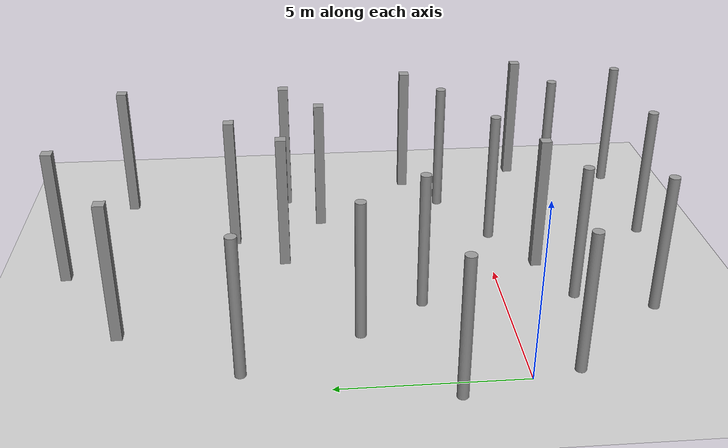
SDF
<sdf version="1.6">
 <world name="default">
  <model name="ground_plane">
   <static>1</static>
   <link name="link">
    <collision name="collision">
     <geometry><plane><normal>0 0 1</normal><size>100 100</size></plane></geometry>
    </collision>
    <visual name="visual">
     <cast_shadows>0</cast_shadows>
     <geometry><plane><normal>0 0 1</normal><size>100 100</size></plane></geometry>
     <material>
      <script><uri>file://media/materials/scripts/gazebo.material</uri><name>Gazebo/Gray</name></script>
     </material>
    </visual>
   </link>
  </model>
  <model name="unit_cylinder">
   <link name="link">
    <inertial>
     <mass>1000</mass>
     <inertia><ixx>145.833</ixx><ixy>0</ixy><ixz>0</ixz><iyy>145.833</iyy><iyz>0</iyz><izz>125</izz></inertia>
    </inertial>
    <visual name="visual">
     <geometry><cylinder><radius>0.15</radius><length>4</length></cylinder></geometry>
     <material>
      <script><name>Gazebo/Grey</name><uri>file://media/materials/scripts/gazebo.material</uri></script>
      <shader type="vertex"><normal_map>__default__</normal_map></shader>
      <ambient>0.3 0.3 0.3 1</ambient>
      <diffuse>0.7 0.7 0.7 1</diffuse>
      <specular>0.01 0.01 0.01 1</specular>
      <emissive>0 0 0 1</emissive>
     </material>
    </visual>
    <collision name="collision">
     <geometry><cylinder><radius>0.15</radius><length>4</length></cylinder></geometry>
     <surface>
      <friction>
       <ode><mu>1</mu><mu2>1</mu2><fdir1>0 0 0</fdir1><slip1>0</slip1><slip2>0</slip2></ode>
       <torsional>
        <coefficient>1</coefficient>
        <patch_radius>0</patch_radius>
        <surface_radius>0</surface_radius>
        <use_patch_radius>1</use_patch_radius>
        <ode><slip>0</slip></ode>
       </torsional>
      </friction>
      <bounce><restitution_coefficient>0</restitution_coefficient><threshold>1e+06</threshold></bounce>
      <contact>
       <collide_without_contact>0</collide_without_contact>
       <collide_without_contact_bitmask>1</collide_without_contact_bitmask>
       <collide_bitmask>1</collide_bitmask>
       <ode>
        <soft_cfm>0</soft_cfm>
        <soft_erp>0.2</soft_erp>
        <kp>1e+13</kp>
        <kd>1</kd>
        <max_vel>0.01</max_vel>
        <min_depth>0</min_depth>
       </ode>
       <bullet>
        <split_impulse>1</split_impulse>
        <split_impulse_penetration_threshold>-0.01</split_impulse_penetration_threshold>
        <soft_cfm>0</soft_cfm>
        <soft_erp>0.2</soft_erp>
        <kp>1e+13</kp>
        <kd>1</kd>
       </bullet>
      </contact>
     </surface>
    </collision>
   </link>
   <static>0</static>
   <pose>3.55788 2.30314 1.99998 -2e-06 -0 -0.201387</pose>
  </model>
  <model name="unit_cylinder_clone_3">
   <link name="link">
    <inertial>
     <mass>1000</mass>
     <inertia><ixx>145.833</ixx><ixy>0</ixy><ixz>0</ixz><iyy>145.833</iyy><iyz>0</iyz><izz>125</izz></inertia>
    </inertial>
    <visual name="visual">
     <geometry><cylinder><radius>0.15</radius><length>4</length></cylinder></geometry>
     <material>
      <script><name>Gazebo/Grey</name><uri>file://media/materials/scripts/gazebo.material</uri></script>
      <shader type="vertex"><normal_map>__default__</normal_map></shader>
      <ambient>0.3 0.3 0.3 1</ambient>
      <diffuse>0.7 0.7 0.7 1</diffuse>
      <specular>0.01 0.01 0.01 1</specular>
      <emissive>0 0 0 1</emissive>
     </material>
    </visual>
    <collision name="collision">
     <geometry><cylinder><radius>0.15</radius><length>4</length></cylinder></geometry>
     <surface>
      <friction>
       <ode><mu>1</mu><mu2>1</mu2><fdir1>0 0 0</fdir1><slip1>0</slip1><slip2>0</slip2></ode>
       <torsional>
        <coefficient>1</coefficient>
        <patch_radius>0</patch_radius>
        <surface_radius>0</surface_radius>
        <use_patch_radius>1</use_patch_radius>
        <ode><slip>0</slip></ode>
       </torsional>
      </friction>
      <bounce><restitution_coefficient>0</restitution_coefficient><threshold>1e+06</threshold></bounce>
      <contact>
       <collide_without_contact>0</collide_without_contact>
       <collide_without_contact_bitmask>1</collide_without_contact_bitmask>
       <collide_bitmask>1</collide_bitmask>
       <ode>
        <soft_cfm>0</soft_cfm>
        <soft_erp>0.2</soft_erp>
        <kp>1e+13</kp>
        <kd>1</kd>
        <max_vel>0.01</max_vel>
        <min_depth>0</min_depth>
       </ode>
       <bullet>
        <split_impulse>1</split_impulse>
        <split_impulse_penetration_threshold>-0.01</split_impulse_penetration_threshold>
        <soft_cfm>0</soft_cfm>
        <soft_erp>0.2</soft_erp>
        <kp>1e+13</kp>
        <kd>1</kd>
       </bullet>
      </contact>
     </surface>
    </collision>
   </link>
   <static>0</static>
   <pose>0.764098 7.25686 1.99998 -2e-06 -1e-06 -0.193878</pose>
  </model>
  <model name="unit_cylinder_clone_0_clone">
   <link name="link">
    <inertial>
     <mass>1000</mass>
     <inertia><ixx>145.833</ixx><ixy>0</ixy><ixz>0</ixz><iyy>145.833</iyy><iyz>0</iyz><izz>125</izz></inertia>
    </inertial>
    <visual name="visual">
     <geometry><cylinder><radius>0.15</radius><length>4</length></cylinder></geometry>
     <material>
      <script><name>Gazebo/Grey</name><uri>file://media/materials/scripts/gazebo.material</uri></script>
      <shader type="vertex"><normal_map>__default__</normal_map></shader>
      <ambient>0.3 0.3 0.3 1</ambient>
      <diffuse>0.7 0.7 0.7 1</diffuse>
      <specular>0.01 0.01 0.01 1</specular>
      <emissive>0 0 0 1</emissive>
     </material>
    </visual>
    <collision name="collision">
     <geometry><cylinder><radius>0.15</radius><length>4</length></cylinder></geometry>
     <surface>
      <friction>
       <ode><mu>1</mu><mu2>1</mu2><fdir1>0 0 0</fdir1><slip1>0</slip1><slip2>0</slip2></ode>
       <torsional>
        <coefficient>1</coefficient>
        <patch_radius>0</patch_radius>
        <surface_radius>0</surface_radius>
        <use_patch_radius>1</use_patch_radius>
        <ode><slip>0</slip></ode>
       </torsional>
      </friction>
      <bounce><restitution_coefficient>0</restitution_coefficient><threshold>1e+06</threshold></bounce>
      <contact>
       <collide_without_contact>0</collide_without_contact>
       <collide_without_contact_bitmask>1</collide_without_contact_bitmask>
       <collide_bitmask>1</collide_bitmask>
       <ode>
        <soft_cfm>0</soft_cfm>
        <soft_erp>0.2</soft_erp>
        <kp>1e+13</kp>
        <kd>1</kd>
        <max_vel>0.01</max_vel>
        <min_depth>0</min_depth>
       </ode>
       <bullet>
        <split_impulse>1</split_impulse>
        <split_impulse_penetration_threshold>-0.01</split_impulse_penetration_threshold>
        <soft_cfm>0</soft_cfm>
        <soft_erp>0.2</soft_erp>
        <kp>1e+13</kp>
        <kd>1</kd>
       </bullet>
      </contact>
     </surface>
    </collision>
   </link>
   <static>0</static>
   <pose>10.8485 -4.98906 1.99998 -1e-06 1e-06 -0.171576</pose>
  </model>
  <model name="unit_cylinder_clone_1_clone_8">
   <link name="link">
    <inertial>
     <mass>1000</mass>
     <inertia><ixx>145.833</ixx><ixy>0</ixy><ixz>0</ixz><iyy>145.833</iyy><iyz>0</iyz><izz>125</izz></inertia>
    </inertial>
    <visual name="visual">
     <geometry><cylinder><radius>0.15</radius><length>4</length></cylinder></geometry>
     <material>
      <script><name>Gazebo/Grey</name><uri>file://media/materials/scripts/gazebo.material</uri></script>
      <shader type="vertex"><normal_map>__default__</normal_map></shader>
      <ambient>0.3 0.3 0.3 1</ambient>
      <diffuse>0.7 0.7 0.7 1</diffuse>
      <specular>0.01 0.01 0.01 1</specular>
      <emissive>0 0 0 1</emissive>
     </material>
    </visual>
    <collision name="collision">
     <geometry><cylinder><radius>0.15</radius><length>4</length></cylinder></geometry>
     <surface>
      <friction>
       <ode><mu>1</mu><mu2>1</mu2><fdir1>0 0 0</fdir1><slip1>0</slip1><slip2>0</slip2></ode>
       <torsional>
        <coefficient>1</coefficient>
        <patch_radius>0</patch_radius>
        <surface_radius>0</surface_radius>
        <use_patch_radius>1</use_patch_radius>
        <ode><slip>0</slip></ode>
       </torsional>
      </friction>
      <bounce><restitution_coefficient>0</restitution_coefficient><threshold>1e+06</threshold></bounce>
      <contact>
       <collide_without_contact>0</collide_without_contact>
       <collide_without_contact_bitmask>1</collide_without_contact_bitmask>
       <collide_bitmask>1</collide_bitmask>
       <ode>
        <soft_cfm>0</soft_cfm>
        <soft_erp>0.2</soft_erp>
        <kp>1e+13</kp>
        <kd>1</kd>
        <max_vel>0.01</max_vel>
        <min_depth>0</min_depth>
       </ode>
       <bullet>
        <split_impulse>1</split_impulse>
        <split_impulse_penetration_threshold>-0.01</split_impulse_penetration_threshold>
        <soft_cfm>0</soft_cfm>
        <soft_erp>0.2</soft_erp>
        <kp>1e+13</kp>
        <kd>1</kd>
       </bullet>
      </contact>
     </surface>
    </collision>
   </link>
   <static>0</static>
   <pose>0.289465 -1.27897 1.99995 -0.000271 -2.6e-05 -0.890373</pose>
  </model>
  <model name="unit_cylinder_clone_1_clone_23">
   <link name="link">
    <inertial>
     <mass>1000</mass>
     <inertia><ixx>145.833</ixx><ixy>0</ixy><ixz>0</ixz><iyy>145.833</iyy><iyz>0</iyz><izz>125</izz></inertia>
    </inertial>
    <visual name="visual">
     <geometry><cylinder><radius>0.15</radius><length>4</length></cylinder></geometry>
     <material>
      <script><name>Gazebo/Grey</name><uri>file://media/materials/scripts/gazebo.material</uri></script>
      <shader type="vertex"><normal_map>__default__</normal_map></shader>
      <ambient>0.3 0.3 0.3 1</ambient>
      <diffuse>0.7 0.7 0.7 1</diffuse>
      <specular>0.01 0.01 0.01 1</specular>
      <emissive>0 0 0 1</emissive>
     </material>
    </visual>
    <collision name="collision">
     <geometry><cylinder><radius>0.15</radius><length>4</length></cylinder></geometry>
     <surface>
      <friction>
       <ode><mu>1</mu><mu2>1</mu2><fdir1>0 0 0</fdir1><slip1>0</slip1><slip2>0</slip2></ode>
       <torsional>
        <coefficient>1</coefficient>
        <patch_radius>0</patch_radius>
        <surface_radius>0</surface_radius>
        <use_patch_radius>1</use_patch_radius>
        <ode><slip>0</slip></ode>
       </torsional>
      </friction>
      <bounce><restitution_coefficient>0</restitution_coefficient><threshold>1e+06</threshold></bounce>
      <contact>
       <collide_without_contact>0</collide_without_contact>
       <collide_without_contact_bitmask>1</collide_without_contact_bitmask>
       <collide_bitmask>1</collide_bitmask>
       <ode>
        <soft_cfm>0</soft_cfm>
        <soft_erp>0.2</soft_erp>
        <kp>1e+13</kp>
        <kd>1</kd>
        <max_vel>0.01</max_vel>
        <min_depth>0</min_depth>
       </ode>
       <bullet>
        <split_impulse>1</split_impulse>
        <split_impulse_penetration_threshold>-0.01</split_impulse_penetration_threshold>
        <soft_cfm>0</soft_cfm>
        <soft_erp>0.2</soft_erp>
        <kp>1e+13</kp>
        <kd>1</kd>
       </bullet>
      </contact>
     </surface>
    </collision>
   </link>
   <static>0</static>
   <pose>7.09492 -5.00661 1.99998 -1e-06 1e-06 -0.352491</pose>
  </model>
  <model name="unit_cylinder_clone_1_clone_29">
   <link name="link">
    <inertial>
     <mass>1000</mass>
     <inertia><ixx>145.833</ixx><ixy>0</ixy><ixz>0</ixz><iyy>145.833</iyy><iyz>0</iyz><izz>125</izz></inertia>
    </inertial>
    <visual name="visual">
     <geometry><cylinder><radius>0.15</radius><length>4</length></cylinder></geometry>
     <material>
      <script><name>Gazebo/Grey</name><uri>file://media/materials/scripts/gazebo.material</uri></script>
      <shader type="vertex"><normal_map>__default__</normal_map></shader>
      <ambient>0.3 0.3 0.3 1</ambient>
      <diffuse>0.7 0.7 0.7 1</diffuse>
      <specular>0.01 0.01 0.01 1</specular>
      <emissive>0 0 0 1</emissive>
     </material>
    </visual>
    <collision name="collision">
     <geometry><cylinder><radius>0.15</radius><length>4</length></cylinder></geometry>
     <surface>
      <friction>
       <ode><mu>1</mu><mu2>1</mu2><fdir1>0 0 0</fdir1><slip1>0</slip1><slip2>0</slip2></ode>
       <torsional>
        <coefficient>1</coefficient>
        <patch_radius>0</patch_radius>
        <surface_radius>0</surface_radius>
        <use_patch_radius>1</use_patch_radius>
        <ode><slip>0</slip></ode>
       </torsional>
      </friction>
      <bounce><restitution_coefficient>0</restitution_coefficient><threshold>1e+06</threshold></bounce>
      <contact>
       <collide_without_contact>0</collide_without_contact>
       <collide_without_contact_bitmask>1</collide_without_contact_bitmask>
       <collide_bitmask>1</collide_bitmask>
       <ode>
        <soft_cfm>0</soft_cfm>
        <soft_erp>0.2</soft_erp>
        <kp>1e+13</kp>
        <kd>1</kd>
        <max_vel>0.01</max_vel>
        <min_depth>0</min_depth>
       </ode>
       <bullet>
        <split_impulse>1</split_impulse>
        <split_impulse_penetration_threshold>-0.01</split_impulse_penetration_threshold>
        <soft_cfm>0</soft_cfm>
        <soft_erp>0.2</soft_erp>
        <kp>1e+13</kp>
        <kd>1</kd>
       </bullet>
      </contact>
     </surface>
    </collision>
   </link>
   <static>0</static>
   <pose>9.84571 -2.62797 1.99995 -0.000271 -2.6e-05 -0.891066</pose>
  </model>
  <model name="unit_cylinder_clone_1_clone_7_clone">
   <link name="link">
    <inertial>
     <mass>1000</mass>
     <inertia><ixx>145.833</ixx><ixy>0</ixy><ixz>0</ixz><iyy>145.833</iyy><iyz>0</iyz><izz>125</izz></inertia>
    </inertial>
    <visual name="visual">
     <geometry><cylinder><radius>0.15</radius><length>4</length></cylinder></geometry>
     <material>
      <script><name>Gazebo/Grey</name><uri>file://media/materials/scripts/gazebo.material</uri></script>
      <shader type="vertex"><normal_map>__default__</normal_map></shader>
      <ambient>0.3 0.3 0.3 1</ambient>
      <diffuse>0.7 0.7 0.7 1</diffuse>
      <specular>0.01 0.01 0.01 1</specular>
      <emissive>0 0 0 1</emissive>
     </material>
    </visual>
    <collision name="collision">
     <geometry><cylinder><radius>0.15</radius><length>4</length></cylinder></geometry>
     <surface>
      <friction>
       <ode><mu>1</mu><mu2>1</mu2><fdir1>0 0 0</fdir1><slip1>0</slip1><slip2>0</slip2></ode>
       <torsional>
        <coefficient>1</coefficient>
        <patch_radius>0</patch_radius>
        <surface_radius>0</surface_radius>
        <use_patch_radius>1</use_patch_radius>
        <ode><slip>0</slip></ode>
       </torsional>
      </friction>
      <bounce><restitution_coefficient>0</restitution_coefficient><threshold>1e+06</threshold></bounce>
      <contact>
       <collide_without_contact>0</collide_without_contact>
       <collide_without_contact_bitmask>1</collide_without_contact_bitmask>
       <collide_bitmask>1</collide_bitmask>
       <ode>
        <soft_cfm>0</soft_cfm>
        <soft_erp>0.2</soft_erp>
        <kp>1e+13</kp>
        <kd>1</kd>
        <max_vel>0.01</max_vel>
        <min_depth>0</min_depth>
       </ode>
       <bullet>
        <split_impulse>1</split_impulse>
        <split_impulse_penetration_threshold>-0.01</split_impulse_penetration_threshold>
        <soft_cfm>0</soft_cfm>
        <soft_erp>0.2</soft_erp>
        <kp>1e+13</kp>
        <kd>1</kd>
       </bullet>
      </contact>
     </surface>
    </collision>
   </link>
   <static>0</static>
   <pose>2.21006 4.12357 1.99995 -0.000271 -2.7e-05 -0.891304</pose>
  </model>
  <model name="unit_cylinder_clone_1_clone_7_clone_9">
   <link name="link">
    <inertial>
     <mass>1000</mass>
     <inertia><ixx>145.833</ixx><ixy>0</ixy><ixz>0</ixz><iyy>145.833</iyy><iyz>0</iyz><izz>125</izz></inertia>
    </inertial>
    <visual name="visual">
     <geometry><cylinder><radius>0.15</radius><length>4</length></cylinder></geometry>
     <material>
      <script><name>Gazebo/Grey</name><uri>file://media/materials/scripts/gazebo.material</uri></script>
      <shader type="vertex"><normal_map>__default__</normal_map></shader>
      <ambient>0.3 0.3 0.3 1</ambient>
      <diffuse>0.7 0.7 0.7 1</diffuse>
      <specular>0.01 0.01 0.01 1</specular>
      <emissive>0 0 0 1</emissive>
     </material>
    </visual>
    <collision name="collision">
     <geometry><cylinder><radius>0.15</radius><length>4</length></cylinder></geometry>
     <surface>
      <friction>
       <ode><mu>1</mu><mu2>1</mu2><fdir1>0 0 0</fdir1><slip1>0</slip1><slip2>0</slip2></ode>
       <torsional>
        <coefficient>1</coefficient>
        <patch_radius>0</patch_radius>
        <surface_radius>0</surface_radius>
        <use_patch_radius>1</use_patch_radius>
        <ode><slip>0</slip></ode>
       </torsional>
      </friction>
      <bounce><restitution_coefficient>0</restitution_coefficient><threshold>1e+06</threshold></bounce>
      <contact>
       <collide_without_contact>0</collide_without_contact>
       <collide_without_contact_bitmask>1</collide_without_contact_bitmask>
       <collide_bitmask>1</collide_bitmask>
       <ode>
        <soft_cfm>0</soft_cfm>
        <soft_erp>0.2</soft_erp>
        <kp>1e+13</kp>
        <kd>1</kd>
        <max_vel>0.01</max_vel>
        <min_depth>0</min_depth>
       </ode>
       <bullet>
        <split_impulse>1</split_impulse>
        <split_impulse_penetration_threshold>-0.01</split_impulse_penetration_threshold>
        <soft_cfm>0</soft_cfm>
        <soft_erp>0.2</soft_erp>
        <kp>1e+13</kp>
        <kd>1</kd>
       </bullet>
      </contact>
     </surface>
    </collision>
   </link>
   <static>0</static>
   <pose>2.88112 -4.08104 1.99995 -0.000272 -2.5e-05 -0.886246</pose>
  </model>
  <model name="unit_cylinder_clone_1_clone_7_clone_10">
   <link name="link">
    <inertial>
     <mass>1000</mass>
     <inertia><ixx>145.833</ixx><ixy>0</ixy><ixz>0</ixz><iyy>145.833</iyy><iyz>0</iyz><izz>125</izz></inertia>
    </inertial>
    <visual name="visual">
     <geometry><cylinder><radius>0.15</radius><length>4</length></cylinder></geometry>
     <material>
      <script><name>Gazebo/Grey</name><uri>file://media/materials/scripts/gazebo.material</uri></script>
      <shader type="vertex"><normal_map>__default__</normal_map></shader>
      <ambient>0.3 0.3 0.3 1</ambient>
      <diffuse>0.7 0.7 0.7 1</diffuse>
      <specular>0.01 0.01 0.01 1</specular>
      <emissive>0 0 0 1</emissive>
     </material>
    </visual>
    <collision name="collision">
     <geometry><cylinder><radius>0.15</radius><length>4</length></cylinder></geometry>
     <surface>
      <friction>
       <ode><mu>1</mu><mu2>1</mu2><fdir1>0 0 0</fdir1><slip1>0</slip1><slip2>0</slip2></ode>
       <torsional>
        <coefficient>1</coefficient>
        <patch_radius>0</patch_radius>
        <surface_radius>0</surface_radius>
        <use_patch_radius>1</use_patch_radius>
        <ode><slip>0</slip></ode>
       </torsional>
      </friction>
      <bounce><restitution_coefficient>0</restitution_coefficient><threshold>1e+06</threshold></bounce>
      <contact>
       <collide_without_contact>0</collide_without_contact>
       <collide_without_contact_bitmask>1</collide_without_contact_bitmask>
       <collide_bitmask>1</collide_bitmask>
       <ode>
        <soft_cfm>0</soft_cfm>
        <soft_erp>0.2</soft_erp>
        <kp>1e+13</kp>
        <kd>1</kd>
        <max_vel>0.01</max_vel>
        <min_depth>0</min_depth>
       </ode>
       <bullet>
        <split_impulse>1</split_impulse>
        <split_impulse_penetration_threshold>-0.01</split_impulse_penetration_threshold>
        <soft_cfm>0</soft_cfm>
        <soft_erp>0.2</soft_erp>
        <kp>1e+13</kp>
        <kd>1</kd>
       </bullet>
      </contact>
     </surface>
    </collision>
   </link>
   <static>0</static>
   <pose>-0.498852 1.86456 1.99995 -0.000272 -2.5e-05 -0.885145</pose>
  </model>
  <model name="unit_cylinder_clone_10">
   <link name="link">
    <inertial>
     <mass>1000</mass>
     <inertia><ixx>145.833</ixx><ixy>0</ixy><ixz>0</ixz><iyy>145.833</iyy><iyz>0</iyz><izz>125</izz></inertia>
    </inertial>
    <visual name="visual">
     <geometry><cylinder><radius>0.15</radius><length>4</length></cylinder></geometry>
     <material>
      <script><name>Gazebo/Grey</name><uri>file://media/materials/scripts/gazebo.material</uri></script>
      <shader type="vertex"><normal_map>__default__</normal_map></shader>
      <ambient>0.3 0.3 0.3 1</ambient>
      <diffuse>0.7 0.7 0.7 1</diffuse>
      <specular>0.01 0.01 0.01 1</specular>
      <emissive>0 0 0 1</emissive>
     </material>
    </visual>
    <collision name="collision">
     <geometry><cylinder><radius>0.15</radius><length>4</length></cylinder></geometry>
     <surface>
      <friction>
       <ode><mu>1</mu><mu2>1</mu2><fdir1>0 0 0</fdir1><slip1>0</slip1><slip2>0</slip2></ode>
       <torsional>
        <coefficient>1</coefficient>
        <patch_radius>0</patch_radius>
        <surface_radius>0</surface_radius>
        <use_patch_radius>1</use_patch_radius>
        <ode><slip>0</slip></ode>
       </torsional>
      </friction>
      <bounce><restitution_coefficient>0</restitution_coefficient><threshold>1e+06</threshold></bounce>
      <contact>
       <collide_without_contact>0</collide_without_contact>
       <collide_without_contact_bitmask>1</collide_without_contact_bitmask>
       <collide_bitmask>1</collide_bitmask>
       <ode>
        <soft_cfm>0</soft_cfm>
        <soft_erp>0.2</soft_erp>
        <kp>1e+13</kp>
        <kd>1</kd>
        <max_vel>0.01</max_vel>
        <min_depth>0</min_depth>
       </ode>
       <bullet>
        <split_impulse>1</split_impulse>
        <split_impulse_penetration_threshold>-0.01</split_impulse_penetration_threshold>
        <soft_cfm>0</soft_cfm>
        <soft_erp>0.2</soft_erp>
        <kp>1e+13</kp>
        <kd>1</kd>
       </bullet>
      </contact>
     </surface>
    </collision>
   </link>
   <static>0</static>
   <pose>9.48043 1.00475 1.99998 -2e-06 1e-06 -0.19166</pose>
  </model>
  <model name="unit_cylinder_clone_11">
   <link name="link">
    <inertial>
     <mass>1000</mass>
     <inertia><ixx>145.833</ixx><ixy>0</ixy><ixz>0</ixz><iyy>145.833</iyy><iyz>0</iyz><izz>125</izz></inertia>
    </inertial>
    <visual name="visual">
     <geometry><cylinder><radius>0.15</radius><length>4</length></cylinder></geometry>
     <material>
      <script><name>Gazebo/Grey</name><uri>file://media/materials/scripts/gazebo.material</uri></script>
      <shader type="vertex"><normal_map>__default__</normal_map></shader>
      <ambient>0.3 0.3 0.3 1</ambient>
      <diffuse>0.7 0.7 0.7 1</diffuse>
      <specular>0.01 0.01 0.01 1</specular>
      <emissive>0 0 0 1</emissive>
     </material>
    </visual>
    <collision name="collision">
     <geometry><cylinder><radius>0.15</radius><length>4</length></cylinder></geometry>
     <surface>
      <friction>
       <ode><mu>1</mu><mu2>1</mu2><fdir1>0 0 0</fdir1><slip1>0</slip1><slip2>0</slip2></ode>
       <torsional>
        <coefficient>1</coefficient>
        <patch_radius>0</patch_radius>
        <surface_radius>0</surface_radius>
        <use_patch_radius>1</use_patch_radius>
        <ode><slip>0</slip></ode>
       </torsional>
      </friction>
      <bounce><restitution_coefficient>0</restitution_coefficient><threshold>1e+06</threshold></bounce>
      <contact>
       <collide_without_contact>0</collide_without_contact>
       <collide_without_contact_bitmask>1</collide_without_contact_bitmask>
       <collide_bitmask>1</collide_bitmask>
       <ode>
        <soft_cfm>0</soft_cfm>
        <soft_erp>0.2</soft_erp>
        <kp>1e+13</kp>
        <kd>1</kd>
        <max_vel>0.01</max_vel>
        <min_depth>0</min_depth>
       </ode>
       <bullet>
        <split_impulse>1</split_impulse>
        <split_impulse_penetration_threshold>-0.01</split_impulse_penetration_threshold>
        <soft_cfm>0</soft_cfm>
        <soft_erp>0.2</soft_erp>
        <kp>1e+13</kp>
        <kd>1</kd>
       </bullet>
      </contact>
     </surface>
    </collision>
   </link>
   <static>0</static>
   <pose>7.15955 -0.270159 1.99998 -1e-06 -0 -0.201085</pose>
  </model>
  <model name="unit_cylinder_clone_clone_2">
   <link name="link">
    <inertial>
     <mass>1000</mass>
     <inertia><ixx>145.833</ixx><ixy>0</ixy><ixz>0</ixz><iyy>145.833</iyy><iyz>0</iyz><izz>125</izz></inertia>
    </inertial>
    <visual name="visual">
     <geometry><cylinder><radius>0.15</radius><length>4</length></cylinder></geometry>
     <material>
      <script><name>Gazebo/Grey</name><uri>file://media/materials/scripts/gazebo.material</uri></script>
      <shader type="vertex"><normal_map>__default__</normal_map></shader>
      <ambient>0.3 0.3 0.3 1</ambient>
      <diffuse>0.7 0.7 0.7 1</diffuse>
      <specular>0.01 0.01 0.01 1</specular>
      <emissive>0 0 0 1</emissive>
     </material>
    </visual>
    <collision name="collision">
     <geometry><cylinder><radius>0.15</radius><length>4</length></cylinder></geometry>
     <surface>
      <friction>
       <ode><mu>1</mu><mu2>1</mu2><fdir1>0 0 0</fdir1><slip1>0</slip1><slip2>0</slip2></ode>
       <torsional>
        <coefficient>1</coefficient>
        <patch_radius>0</patch_radius>
        <surface_radius>0</surface_radius>
        <use_patch_radius>1</use_patch_radius>
        <ode><slip>0</slip></ode>
       </torsional>
      </friction>
      <bounce><restitution_coefficient>0</restitution_coefficient><threshold>1e+06</threshold></bounce>
      <contact>
       <collide_without_contact>0</collide_without_contact>
       <collide_without_contact_bitmask>1</collide_without_contact_bitmask>
       <collide_bitmask>1</collide_bitmask>
       <ode>
        <soft_cfm>0</soft_cfm>
        <soft_erp>0.2</soft_erp>
        <kp>1e+13</kp>
        <kd>1</kd>
        <max_vel>0.01</max_vel>
        <min_depth>0</min_depth>
       </ode>
       <bullet>
        <split_impulse>1</split_impulse>
        <split_impulse_penetration_threshold>-0.01</split_impulse_penetration_threshold>
        <soft_cfm>0</soft_cfm>
        <soft_erp>0.2</soft_erp>
        <kp>1e+13</kp>
        <kd>1</kd>
       </bullet>
      </contact>
     </surface>
    </collision>
   </link>
   <static>0</static>
   <pose>3.61626 -2.03024 1.99998 -2e-06 -0 -0.186897</pose>
  </model>
  <model name="unit_box_clone_26_clone_2">
   <link name="link">
    <inertial>
     <mass>1000</mass>
     <inertia><ixx>166.667</ixx><ixy>0</ixy><ixz>0</ixz><iyy>166.667</iyy><iyz>0</iyz><izz>166.667</izz></inertia>
    </inertial>
    <visual name="visual">
     <geometry><box><size>0.3 0.3 4</size></box></geometry>
     <material>
      <script><name>Gazebo/Grey</name><uri>file://media/materials/scripts/gazebo.material</uri></script>
      <shader type="vertex"><normal_map>__default__</normal_map></shader>
      <ambient>0.3 0.3 0.3 1</ambient>
      <diffuse>0.7 0.7 0.7 1</diffuse>
      <specular>0.01 0.01 0.01 1</specular>
      <emissive>0 0 0 1</emissive>
     </material>
    </visual>
    <collision name="collision">
     <geometry><box><size>0.3 0.3 4</size></box></geometry>
     <surface>
      <friction>
       <ode><mu>1</mu><mu2>1</mu2><fdir1>0 0 0</fdir1><slip1>0</slip1><slip2>0</slip2></ode>
       <torsional>
        <coefficient>1</coefficient>
        <patch_radius>0</patch_radius>
        <surface_radius>0</surface_radius>
        <use_patch_radius>1</use_patch_radius>
        <ode><slip>0</slip></ode>
       </torsional>
      </friction>
      <bounce><restitution_coefficient>0</restitution_coefficient><threshold>1e+06</threshold></bounce>
      <contact>
       <collide_without_contact>0</collide_without_contact>
       <collide_without_contact_bitmask>1</collide_without_contact_bitmask>
       <collide_bitmask>1</collide_bitmask>
       <ode>
        <soft_cfm>0</soft_cfm>
        <soft_erp>0.2</soft_erp>
        <kp>1e+13</kp>
        <kd>1</kd>
        <max_vel>0.01</max_vel>
        <min_depth>0</min_depth>
       </ode>
       <bullet>
        <split_impulse>1</split_impulse>
        <split_impulse_penetration_threshold>-0.01</split_impulse_penetration_threshold>
        <soft_cfm>0</soft_cfm>
        <soft_erp>0.2</soft_erp>
        <kp>1e+13</kp>
        <kd>1</kd>
       </bullet>
      </contact>
     </surface>
    </collision>
   </link>
   <static>0</static>
   <pose>5.42188 -1.32656 2 -3e-06 -1e-06 -0.001025</pose>
  </model>
  <model name="unit_box_clone_26_clone_5">
   <link name="link">
    <inertial>
     <mass>1000</mass>
     <inertia><ixx>166.667</ixx><ixy>0</ixy><ixz>0</ixz><iyy>166.667</iyy><iyz>0</iyz><izz>166.667</izz></inertia>
    </inertial>
    <visual name="visual">
     <geometry><box><size>0.3 0.3 4</size></box></geometry>
     <material>
      <script><name>Gazebo/Grey</name><uri>file://media/materials/scripts/gazebo.material</uri></script>
      <shader type="vertex"><normal_map>__default__</normal_map></shader>
      <ambient>0.3 0.3 0.3 1</ambient>
      <diffuse>0.7 0.7 0.7 1</diffuse>
      <specular>0.01 0.01 0.01 1</specular>
      <emissive>0 0 0 1</emissive>
     </material>
    </visual>
    <collision name="collision">
     <geometry><box><size>0.3 0.3 4</size></box></geometry>
     <surface>
      <friction>
       <ode><mu>1</mu><mu2>1</mu2><fdir1>0 0 0</fdir1><slip1>0</slip1><slip2>0</slip2></ode>
       <torsional>
        <coefficient>1</coefficient>
        <patch_radius>0</patch_radius>
        <surface_radius>0</surface_radius>
        <use_patch_radius>1</use_patch_radius>
        <ode><slip>0</slip></ode>
       </torsional>
      </friction>
      <bounce><restitution_coefficient>0</restitution_coefficient><threshold>1e+06</threshold></bounce>
      <contact>
       <collide_without_contact>0</collide_without_contact>
       <collide_without_contact_bitmask>1</collide_without_contact_bitmask>
       <collide_bitmask>1</collide_bitmask>
       <ode>
        <soft_cfm>0</soft_cfm>
        <soft_erp>0.2</soft_erp>
        <kp>1e+13</kp>
        <kd>1</kd>
        <max_vel>0.01</max_vel>
        <min_depth>0</min_depth>
       </ode>
       <bullet>
        <split_impulse>1</split_impulse>
        <split_impulse_penetration_threshold>-0.01</split_impulse_penetration_threshold>
        <soft_cfm>0</soft_cfm>
        <soft_erp>0.2</soft_erp>
        <kp>1e+13</kp>
        <kd>1</kd>
       </bullet>
      </contact>
     </surface>
    </collision>
   </link>
   <static>0</static>
   <pose>11.7154 -1.81908 2 -5e-06 1e-06 -0.002556</pose>
  </model>
  <model name="unit_box_clone_22_clone">
   <link name="link">
    <inertial>
     <mass>1000</mass>
     <inertia><ixx>166.667</ixx><ixy>0</ixy><ixz>0</ixz><iyy>166.667</iyy><iyz>0</iyz><izz>166.667</izz></inertia>
    </inertial>
    <visual name="visual">
     <geometry><box><size>0.3 0.3 4</size></box></geometry>
     <material>
      <script><name>Gazebo/Grey</name><uri>file://media/materials/scripts/gazebo.material</uri></script>
      <shader type="vertex"><normal_map>__default__</normal_map></shader>
      <ambient>0.3 0.3 0.3 1</ambient>
      <diffuse>0.7 0.7 0.7 1</diffuse>
      <specular>0.01 0.01 0.01 1</specular>
      <emissive>0 0 0 1</emissive>
     </material>
    </visual>
    <collision name="collision">
     <geometry><box><size>0.3 0.3 4</size></box></geometry>
     <surface>
      <friction>
       <ode><mu>1</mu><mu2>1</mu2><fdir1>0 0 0</fdir1><slip1>0</slip1><slip2>0</slip2></ode>
       <torsional>
        <coefficient>1</coefficient>
        <patch_radius>0</patch_radius>
        <surface_radius>0</surface_radius>
        <use_patch_radius>1</use_patch_radius>
        <ode><slip>0</slip></ode>
       </torsional>
      </friction>
      <bounce><restitution_coefficient>0</restitution_coefficient><threshold>1e+06</threshold></bounce>
      <contact>
       <collide_without_contact>0</collide_without_contact>
       <collide_without_contact_bitmask>1</collide_without_contact_bitmask>
       <collide_bitmask>1</collide_bitmask>
       <ode>
        <soft_cfm>0</soft_cfm>
        <soft_erp>0.2</soft_erp>
        <kp>1e+13</kp>
        <kd>1</kd>
        <max_vel>0.01</max_vel>
        <min_depth>0</min_depth>
       </ode>
       <bullet>
        <split_impulse>1</split_impulse>
        <split_impulse_penetration_threshold>-0.01</split_impulse_penetration_threshold>
        <soft_cfm>0</soft_cfm>
        <soft_erp>0.2</soft_erp>
        <kp>1e+13</kp>
        <kd>1</kd>
       </bullet>
      </contact>
     </surface>
    </collision>
   </link>
   <static>0</static>
   <pose>2.64302 10.536 2 3e-06 0 -0.015273</pose>
  </model>
  <model name="unit_box_clone_22_clone_0">
   <link name="link">
    <inertial>
     <mass>1000</mass>
     <inertia><ixx>166.667</ixx><ixy>0</ixy><ixz>0</ixz><iyy>166.667</iyy><iyz>0</iyz><izz>166.667</izz></inertia>
    </inertial>
    <visual name="visual">
     <geometry><box><size>0.3 0.3 4</size></box></geometry>
     <material>
      <script><name>Gazebo/Grey</name><uri>file://media/materials/scripts/gazebo.material</uri></script>
      <shader type="vertex"><normal_map>__default__</normal_map></shader>
      <ambient>0.3 0.3 0.3 1</ambient>
      <diffuse>0.7 0.7 0.7 1</diffuse>
      <specular>0.01 0.01 0.01 1</specular>
      <emissive>0 0 0 1</emissive>
     </material>
    </visual>
    <collision name="collision">
     <geometry><box><size>0.3 0.3 4</size></box></geometry>
     <surface>
      <friction>
       <ode><mu>1</mu><mu2>1</mu2><fdir1>0 0 0</fdir1><slip1>0</slip1><slip2>0</slip2></ode>
       <torsional>
        <coefficient>1</coefficient>
        <patch_radius>0</patch_radius>
        <surface_radius>0</surface_radius>
        <use_patch_radius>1</use_patch_radius>
        <ode><slip>0</slip></ode>
       </torsional>
      </friction>
      <bounce><restitution_coefficient>0</restitution_coefficient><threshold>1e+06</threshold></bounce>
      <contact>
       <collide_without_contact>0</collide_without_contact>
       <collide_without_contact_bitmask>1</collide_without_contact_bitmask>
       <collide_bitmask>1</collide_bitmask>
       <ode>
        <soft_cfm>0</soft_cfm>
        <soft_erp>0.2</soft_erp>
        <kp>1e+13</kp>
        <kd>1</kd>
        <max_vel>0.01</max_vel>
        <min_depth>0</min_depth>
       </ode>
       <bullet>
        <split_impulse>1</split_impulse>
        <split_impulse_penetration_threshold>-0.01</split_impulse_penetration_threshold>
        <soft_cfm>0</soft_cfm>
        <soft_erp>0.2</soft_erp>
        <kp>1e+13</kp>
        <kd>1</kd>
       </bullet>
      </contact>
     </surface>
    </collision>
   </link>
   <static>0</static>
   <pose>9.97929 10.9457 2 -1.2e-05 -2e-06 -0.014401</pose>
  </model>
  <model name="unit_box_clone_22_clone_2">
   <link name="link">
    <inertial>
     <mass>1000</mass>
     <inertia><ixx>166.667</ixx><ixy>0</ixy><ixz>0</ixz><iyy>166.667</iyy><iyz>0</iyz><izz>166.667</izz></inertia>
    </inertial>
    <visual name="visual">
     <geometry><box><size>0.3 0.3 4</size></box></geometry>
     <material>
      <script><name>Gazebo/Grey</name><uri>file://media/materials/scripts/gazebo.material</uri></script>
      <shader type="vertex"><normal_map>__default__</normal_map></shader>
      <ambient>0.3 0.3 0.3 1</ambient>
      <diffuse>0.7 0.7 0.7 1</diffuse>
      <specular>0.01 0.01 0.01 1</specular>
      <emissive>0 0 0 1</emissive>
     </material>
    </visual>
    <collision name="collision">
     <geometry><box><size>0.3 0.3 4</size></box></geometry>
     <surface>
      <friction>
       <ode><mu>1</mu><mu2>1</mu2><fdir1>0 0 0</fdir1><slip1>0</slip1><slip2>0</slip2></ode>
       <torsional>
        <coefficient>1</coefficient>
        <patch_radius>0</patch_radius>
        <surface_radius>0</surface_radius>
        <use_patch_radius>1</use_patch_radius>
        <ode><slip>0</slip></ode>
       </torsional>
      </friction>
      <bounce><restitution_coefficient>0</restitution_coefficient><threshold>1e+06</threshold></bounce>
      <contact>
       <collide_without_contact>0</collide_without_contact>
       <collide_without_contact_bitmask>1</collide_without_contact_bitmask>
       <collide_bitmask>1</collide_bitmask>
       <ode>
        <soft_cfm>0</soft_cfm>
        <soft_erp>0.2</soft_erp>
        <kp>1e+13</kp>
        <kd>1</kd>
        <max_vel>0.01</max_vel>
        <min_depth>0</min_depth>
       </ode>
       <bullet>
        <split_impulse>1</split_impulse>
        <split_impulse_penetration_threshold>-0.01</split_impulse_penetration_threshold>
        <soft_cfm>0</soft_cfm>
        <soft_erp>0.2</soft_erp>
        <kp>1e+13</kp>
        <kd>1</kd>
       </bullet>
      </contact>
     </surface>
    </collision>
   </link>
   <static>0</static>
   <pose>8.49653 4.89877 2 -1.4e-05 -2.2e-05 -0.017076</pose>
  </model>
  <model name="unit_box_clone_22_clone_3">
   <link name="link">
    <inertial>
     <mass>1000</mass>
     <inertia><ixx>166.667</ixx><ixy>0</ixy><ixz>0</ixz><iyy>166.667</iyy><iyz>0</iyz><izz>166.667</izz></inertia>
    </inertial>
    <visual name="visual">
     <geometry><box><size>0.3 0.3 4</size></box></geometry>
     <material>
      <script><name>Gazebo/Grey</name><uri>file://media/materials/scripts/gazebo.material</uri></script>
      <shader type="vertex"><normal_map>__default__</normal_map></shader>
      <ambient>0.3 0.3 0.3 1</ambient>
      <diffuse>0.7 0.7 0.7 1</diffuse>
      <specular>0.01 0.01 0.01 1</specular>
      <emissive>0 0 0 1</emissive>
     </material>
    </visual>
    <collision name="collision">
     <geometry><box><size>0.3 0.3 4</size></box></geometry>
     <surface>
      <friction>
       <ode><mu>1</mu><mu2>1</mu2><fdir1>0 0 0</fdir1><slip1>0</slip1><slip2>0</slip2></ode>
       <torsional>
        <coefficient>1</coefficient>
        <patch_radius>0</patch_radius>
        <surface_radius>0</surface_radius>
        <use_patch_radius>1</use_patch_radius>
        <ode><slip>0</slip></ode>
       </torsional>
      </friction>
      <bounce><restitution_coefficient>0</restitution_coefficient><threshold>1e+06</threshold></bounce>
      <contact>
       <collide_without_contact>0</collide_without_contact>
       <collide_without_contact_bitmask>1</collide_without_contact_bitmask>
       <collide_bitmask>1</collide_bitmask>
       <ode>
        <soft_cfm>0</soft_cfm>
        <soft_erp>0.2</soft_erp>
        <kp>1e+13</kp>
        <kd>1</kd>
        <max_vel>0.01</max_vel>
        <min_depth>0</min_depth>
       </ode>
       <bullet>
        <split_impulse>1</split_impulse>
        <split_impulse_penetration_threshold>-0.01</split_impulse_penetration_threshold>
        <soft_cfm>0</soft_cfm>
        <soft_erp>0.2</soft_erp>
        <kp>1e+13</kp>
        <kd>1</kd>
       </bullet>
      </contact>
     </surface>
    </collision>
   </link>
   <static>0</static>
   <pose>5.72134 12.3949 2.00001 5.7e-05 -0 -0.013483</pose>
  </model>
  <model name="unit_box_clone_22_clone_4">
   <link name="link">
    <inertial>
     <mass>1000</mass>
     <inertia><ixx>166.667</ixx><ixy>0</ixy><ixz>0</ixz><iyy>166.667</iyy><iyz>0</iyz><izz>166.667</izz></inertia>
    </inertial>
    <visual name="visual">
     <geometry><box><size>0.3 0.3 4</size></box></geometry>
     <material>
      <script><name>Gazebo/Grey</name><uri>file://media/materials/scripts/gazebo.material</uri></script>
      <shader type="vertex"><normal_map>__default__</normal_map></shader>
      <ambient>0.3 0.3 0.3 1</ambient>
      <diffuse>0.7 0.7 0.7 1</diffuse>
      <specular>0.01 0.01 0.01 1</specular>
      <emissive>0 0 0 1</emissive>
     </material>
    </visual>
    <collision name="collision">
     <geometry><box><size>0.3 0.3 4</size></box></geometry>
     <surface>
      <friction>
       <ode><mu>1</mu><mu2>1</mu2><fdir1>0 0 0</fdir1><slip1>0</slip1><slip2>0</slip2></ode>
       <torsional>
        <coefficient>1</coefficient>
        <patch_radius>0</patch_radius>
        <surface_radius>0</surface_radius>
        <use_patch_radius>1</use_patch_radius>
        <ode><slip>0</slip></ode>
       </torsional>
      </friction>
      <bounce><restitution_coefficient>0</restitution_coefficient><threshold>1e+06</threshold></bounce>
      <contact>
       <collide_without_contact>0</collide_without_contact>
       <collide_without_contact_bitmask>1</collide_without_contact_bitmask>
       <collide_bitmask>1</collide_bitmask>
       <ode>
        <soft_cfm>0</soft_cfm>
        <soft_erp>0.2</soft_erp>
        <kp>1e+13</kp>
        <kd>1</kd>
        <max_vel>0.01</max_vel>
        <min_depth>0</min_depth>
       </ode>
       <bullet>
        <split_impulse>1</split_impulse>
        <split_impulse_penetration_threshold>-0.01</split_impulse_penetration_threshold>
        <soft_cfm>0</soft_cfm>
        <soft_erp>0.2</soft_erp>
        <kp>1e+13</kp>
        <kd>1</kd>
       </bullet>
      </contact>
     </surface>
    </collision>
   </link>
   <static>0</static>
   <pose>9.97947 5.95191 2 -3e-06 5e-06 -0.009729</pose>
  </model>
  <model name="unit_box_clone_22_clone_5">
   <link name="link">
    <inertial>
     <mass>1000</mass>
     <inertia><ixx>166.667</ixx><ixy>0</ixy><ixz>0</ixz><iyy>166.667</iyy><iyz>0</iyz><izz>166.667</izz></inertia>
    </inertial>
    <visual name="visual">
     <geometry><box><size>0.3 0.3 4</size></box></geometry>
     <material>
      <script><name>Gazebo/Grey</name><uri>file://media/materials/scripts/gazebo.material</uri></script>
      <shader type="vertex"><normal_map>__default__</normal_map></shader>
      <ambient>0.3 0.3 0.3 1</ambient>
      <diffuse>0.7 0.7 0.7 1</diffuse>
      <specular>0.01 0.01 0.01 1</specular>
      <emissive>0 0 0 1</emissive>
     </material>
    </visual>
    <collision name="collision">
     <geometry><box><size>0.3 0.3 4</size></box></geometry>
     <surface>
      <friction>
       <ode><mu>1</mu><mu2>1</mu2><fdir1>0 0 0</fdir1><slip1>0</slip1><slip2>0</slip2></ode>
       <torsional>
        <coefficient>1</coefficient>
        <patch_radius>0</patch_radius>
        <surface_radius>0</surface_radius>
        <use_patch_radius>1</use_patch_radius>
        <ode><slip>0</slip></ode>
       </torsional>
      </friction>
      <bounce><restitution_coefficient>0</restitution_coefficient><threshold>1e+06</threshold></bounce>
      <contact>
       <collide_without_contact>0</collide_without_contact>
       <collide_without_contact_bitmask>1</collide_without_contact_bitmask>
       <collide_bitmask>1</collide_bitmask>
       <ode>
        <soft_cfm>0</soft_cfm>
        <soft_erp>0.2</soft_erp>
        <kp>1e+13</kp>
        <kd>1</kd>
        <max_vel>0.01</max_vel>
        <min_depth>0</min_depth>
       </ode>
       <bullet>
        <split_impulse>1</split_impulse>
        <split_impulse_penetration_threshold>-0.01</split_impulse_penetration_threshold>
        <soft_cfm>0</soft_cfm>
        <soft_erp>0.2</soft_erp>
        <kp>1e+13</kp>
        <kd>1</kd>
       </bullet>
      </contact>
     </surface>
    </collision>
   </link>
   <static>0</static>
   <pose>7.42381 7.56364 2 3e-06 0 -0.016444</pose>
  </model>
  <model name="unit_box_clone_22_clone_6">
   <link name="link">
    <inertial>
     <mass>1000</mass>
     <inertia><ixx>166.667</ixx><ixy>0</ixy><ixz>0</ixz><iyy>166.667</iyy><iyz>0</iyz><izz>166.667</izz></inertia>
    </inertial>
    <visual name="visual">
     <geometry><box><size>0.3 0.3 4</size></box></geometry>
     <material>
      <script><name>Gazebo/Grey</name><uri>file://media/materials/scripts/gazebo.material</uri></script>
      <shader type="vertex"><normal_map>__default__</normal_map></shader>
      <ambient>0.3 0.3 0.3 1</ambient>
      <diffuse>0.7 0.7 0.7 1</diffuse>
      <specular>0.01 0.01 0.01 1</specular>
      <emissive>0 0 0 1</emissive>
     </material>
    </visual>
    <collision name="collision">
     <geometry><box><size>0.3 0.3 4</size></box></geometry>
     <surface>
      <friction>
       <ode><mu>1</mu><mu2>1</mu2><fdir1>0 0 0</fdir1><slip1>0</slip1><slip2>0</slip2></ode>
       <torsional>
        <coefficient>1</coefficient>
        <patch_radius>0</patch_radius>
        <surface_radius>0</surface_radius>
        <use_patch_radius>1</use_patch_radius>
        <ode><slip>0</slip></ode>
       </torsional>
      </friction>
      <bounce><restitution_coefficient>0</restitution_coefficient><threshold>1e+06</threshold></bounce>
      <contact>
       <collide_without_contact>0</collide_without_contact>
       <collide_without_contact_bitmask>1</collide_without_contact_bitmask>
       <collide_bitmask>1</collide_bitmask>
       <ode>
        <soft_cfm>0</soft_cfm>
        <soft_erp>0.2</soft_erp>
        <kp>1e+13</kp>
        <kd>1</kd>
        <max_vel>0.01</max_vel>
        <min_depth>0</min_depth>
       </ode>
       <bullet>
        <split_impulse>1</split_impulse>
        <split_impulse_penetration_threshold>-0.01</split_impulse_penetration_threshold>
        <soft_cfm>0</soft_cfm>
        <soft_erp>0.2</soft_erp>
        <kp>1e+13</kp>
        <kd>1</kd>
       </bullet>
      </contact>
     </surface>
    </collision>
   </link>
   <static>0</static>
   <pose>11 1.99993 2.00001 4.6e-05 3e-06 -0.0139</pose>
  </model>
  <model name="unit_box_clone_22_clone_9">
   <link name="link">
    <inertial>
     <mass>1000</mass>
     <inertia><ixx>166.667</ixx><ixy>0</ixy><ixz>0</ixz><iyy>166.667</iyy><iyz>0</iyz><izz>166.667</izz></inertia>
    </inertial>
    <visual name="visual">
     <geometry><box><size>0.3 0.3 4</size></box></geometry>
     <material>
      <script><name>Gazebo/Grey</name><uri>file://media/materials/scripts/gazebo.material</uri></script>
      <shader type="vertex"><normal_map>__default__</normal_map></shader>
      <ambient>0.3 0.3 0.3 1</ambient>
      <diffuse>0.7 0.7 0.7 1</diffuse>
      <specular>0.01 0.01 0.01 1</specular>
      <emissive>0 0 0 1</emissive>
     </material>
    </visual>
    <collision name="collision">
     <geometry><box><size>0.3 0.3 4</size></box></geometry>
     <surface>
      <friction>
       <ode><mu>1</mu><mu2>1</mu2><fdir1>0 0 0</fdir1><slip1>0</slip1><slip2>0</slip2></ode>
       <torsional>
        <coefficient>1</coefficient>
        <patch_radius>0</patch_radius>
        <surface_radius>0</surface_radius>
        <use_patch_radius>1</use_patch_radius>
        <ode><slip>0</slip></ode>
       </torsional>
      </friction>
      <bounce><restitution_coefficient>0</restitution_coefficient><threshold>1e+06</threshold></bounce>
      <contact>
       <collide_without_contact>0</collide_without_contact>
       <collide_without_contact_bitmask>1</collide_without_contact_bitmask>
       <collide_bitmask>1</collide_bitmask>
       <ode>
        <soft_cfm>0</soft_cfm>
        <soft_erp>0.2</soft_erp>
        <kp>1e+13</kp>
        <kd>1</kd>
        <max_vel>0.01</max_vel>
        <min_depth>0</min_depth>
       </ode>
       <bullet>
        <split_impulse>1</split_impulse>
        <split_impulse_penetration_threshold>-0.01</split_impulse_penetration_threshold>
        <soft_cfm>0</soft_cfm>
        <soft_erp>0.2</soft_erp>
        <kp>1e+13</kp>
        <kd>1</kd>
       </bullet>
      </contact>
     </surface>
    </collision>
   </link>
   <static>0</static>
   <pose>6.12599 6.06571 2.00001 1.5e-05 -2.5e-05 -0.012487</pose>
  </model>
 </world>
</sdf>
